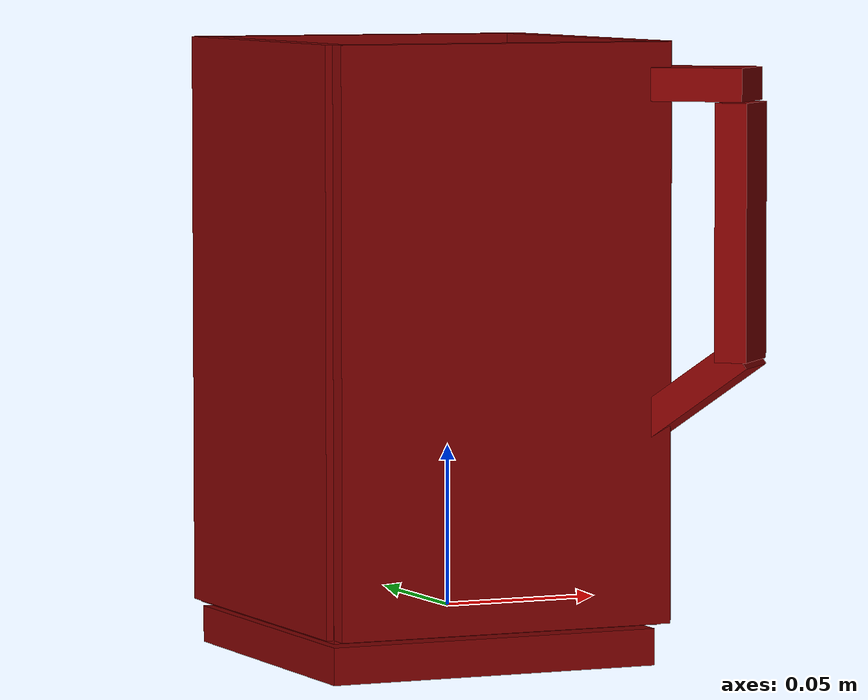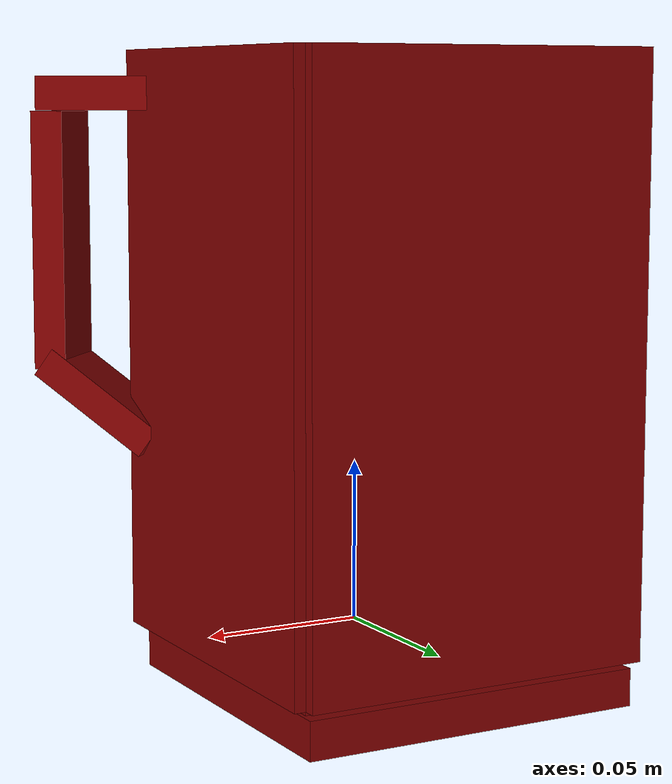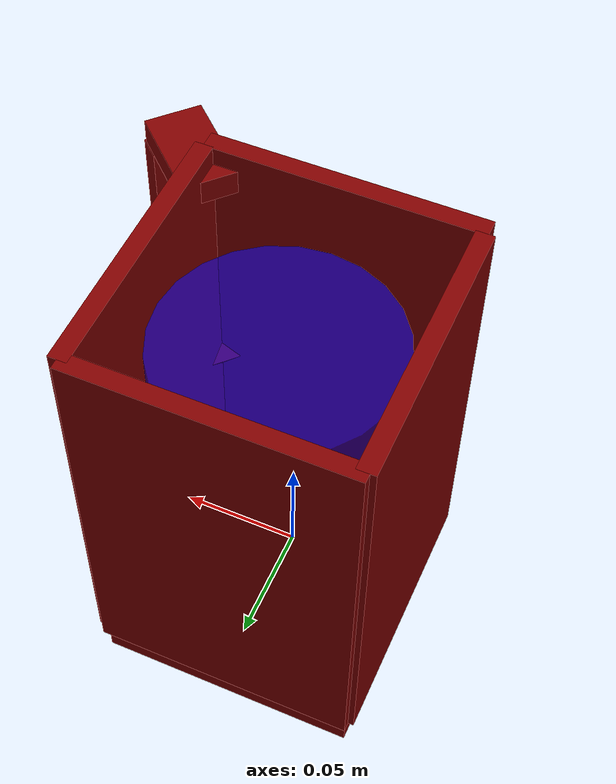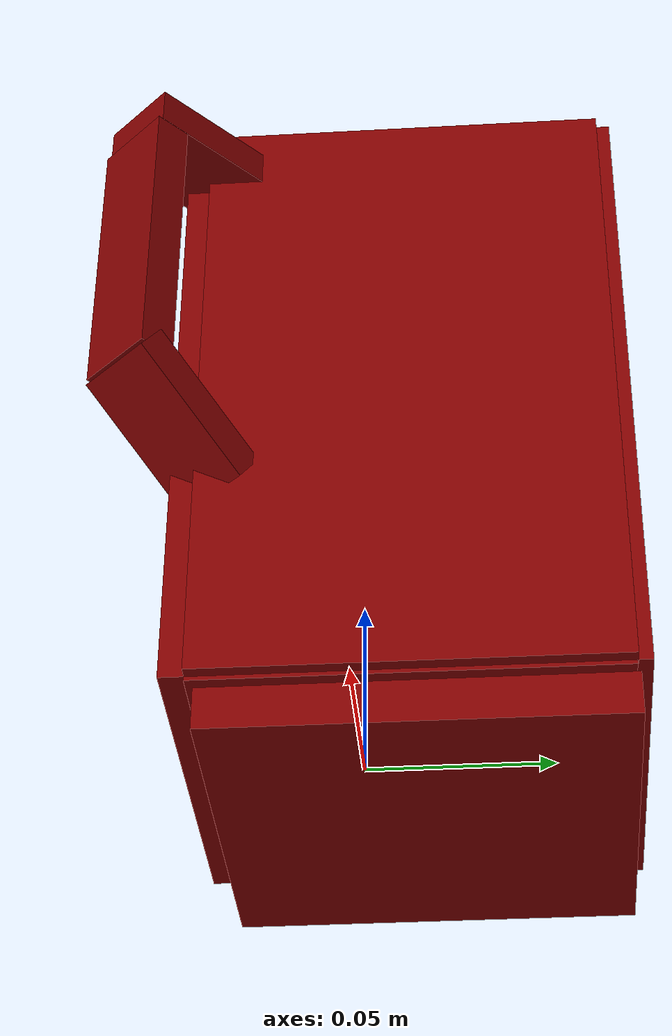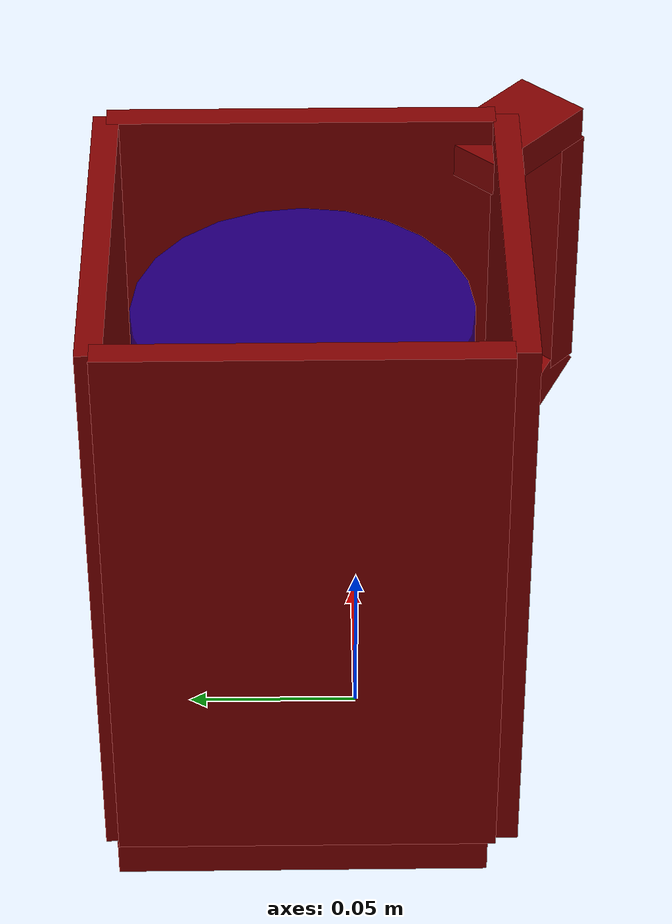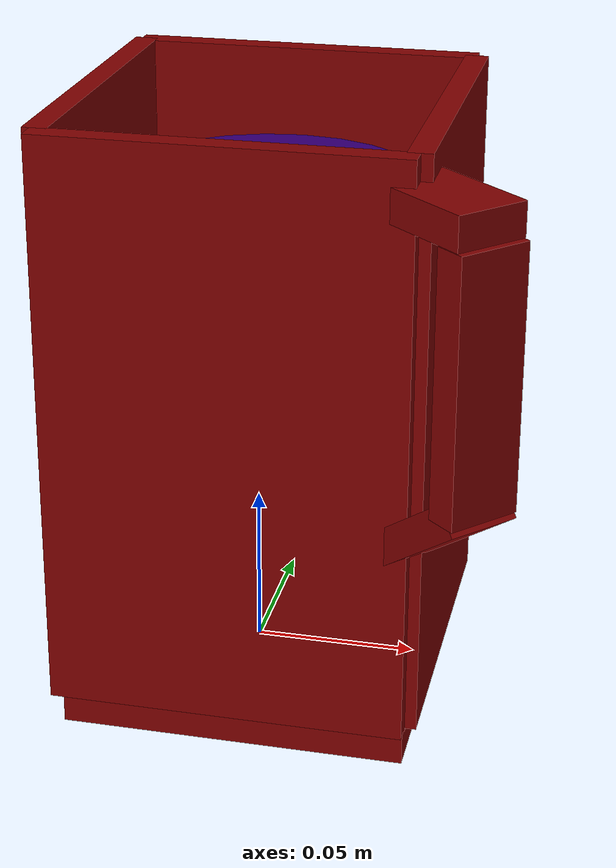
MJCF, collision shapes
<mujoco model="model">
  <option timestep="0.002" gravity="0.0 0.0 -9.81"/>
  <compiler angle="radian"/>
  <asset>
    <mesh file="visuals/blade.obj" name="blade_vis"/>
    <mesh file="visuals/pitcher.obj" name="pitcher_vis"/>
    <mesh file="visuals/pitcher_main.obj" name="pitcher_main_vis"/>
    <texture file="visuals/T_BC001.png" name="pitcher_material" type="2d"/>
    <material name="pitcher_material" rgba="1 1 1 1.0" texture="pitcher_material" shininess="0.5" specular="1"/>
    <texture file="visuals/T_BC001.png" name="blade_material" type="2d"/>
    <material name="blade_material" rgba="1 1 1 1.0" texture="blade_material" shininess="0.5" specular="2"/>
    <texture file="visuals/T_BC001.png" name="pitcher_main_material" type="2d"/>
    <material name="pitcher_main_material" rgba="1 1 1 0.800000011920929" texture="pitcher_main_material" shininess="0.5" specular="0.33333333333333337"/>
  </asset>
  <default>
    <default class="visual">
      <geom conaffinity="0" contype="0" group="1" type="mesh"/>
    </default>
    <default class="collision">
      <geom group="0" rgba="0.5 0 0 0.5" density="1.0" solref="0.004 1" solimp="0.998 0.998 0.001"/>
    </default>
    <default class="spawn">
      <geom group="0" rgba="1 1 1 0.5" contype="0" conaffinity="0"/>
      <site group="0" rgba="1 1 1 0.5"/>
    </default>
    <default class="region">
      <geom group="1" conaffinity="0" contype="0" rgba="0 1 0 0" mass="0"/>
    </default>
  </default>
  <worldbody>
    <body>
      <body name="object">
        <body name="pitcher">
          <geom mesh="pitcher_vis" type="mesh" solimp="0.998 0.998 0.001" solref="0.001 1" friction="0.95 0.3 0.1" class="visual" material="pitcher_material"/>
          <geom class="collision" type="box" pos="0.06211698 -0.04456136 0.16299413" size="0.011408685706555843 0.01944798044860363 0.005156984087079763" quat="0.9165320992469788 0.0 0.0 0.3999611437320709" name="pitcher_handle_2"/>
          <geom class="collision" type="box" pos="0.07395798 -0.05521826 0.11783241" size="0.011408684775233269 0.005029662046581507 0.03966490179300308" quat="0.9165320992469788 0.0 0.0 0.3999611437320709" name="pitcher_handle_1"/>
          <geom class="collision" type="box" pos="0.06330109 -0.04519241 0.06830074" size="0.011408684775233269 0.005029662046581507 0.020796068012714386" quat="0.8157005906105042 0.41792792081832886 0.18237754702568054 0.3559596538543701" name="pitcher_handle_0"/>
          <geom type="box" pos="-0.00042898 0.01620540 -0.01168829" size="0.05380856990814209 0.054080430418252945 0.005756262689828873" quat="1.0 0.0 0.0 0.0" class="collision"/>
          <body name="blade">
            <geom mesh="blade_vis" type="mesh" solimp="0.998 0.998 0.001" solref="0.001 1" friction="0.95 0.3 0.1" class="visual" material="blade_material"/>
            <geom type="cylinder" pos="-0.00076259 0.01659068 0.01732909" size="0.008968064561486244 0.01291128620505333" quat="1.0 0.0 0.0 0.0" class="collision"/>
            <geom type="box" pos="-0.00581280 0.00452992 0.01276770" size="0.003935224376618862 0.006382464896887541 0.0007913180743344128" quat="0.8590430617332458 0.497831791639328 -0.05976736545562744 -0.10313273966312408" class="collision"/>
            <geom type="box" pos="-0.01041935 -0.00741227 0.00744018" size="0.0034937355667352676 0.009759597480297089 0.0007913181325420737" quat="0.9872918128967285 0.0 -0.0 -0.15891800820827484" class="collision"/>
            <geom type="box" pos="0.00393238 0.02946151 0.01276770" size="0.003935224376618862 0.006382465828210115 0.0007913180743344128" quat="0.10313277691602707 0.05976737663149834 0.49783167243003845 0.8590431213378906" class="collision"/>
            <geom type="box" pos="0.00853893 0.04140369 0.00744018" size="0.0034937355667352676 0.009759597480297089 0.0007913181325420737" quat="0.158918097615242 0.0 0.0 0.9872917532920837" class="collision"/>
            <geom type="box" pos="0.01117086 0.01255952 0.01737689" size="0.003935224376618862 0.006382464896887541 0.0007913180743344128" quat="0.819078803062439 0.0 0.0 0.5736810564994812" class="collision"/>
            <geom type="box" pos="0.02087990 0.00881369 0.02663890" size="0.0034937357995659113 0.009759597480297089 0.0007913180743344128" quat="0.6929638385772705 -0.45357760787010193 -0.3069186508655548 0.4689023196697235" class="collision"/>
            <geom type="box" pos="-0.01271869 0.02094228 0.01763733" size="0.003935224376618862 0.006382465362548828 0.0007913180743344128" quat="0.573681116104126 0.0 -0.0 -0.8190787434577942" class="collision"/>
            <geom type="box" pos="-0.02242772 0.02468811 0.02689934" size="0.0034937355667352676 0.009759597480297089 0.0007913181325420737" quat="0.4689021706581116 -0.3069183826446533 0.4535774290561676 -0.6929641962051392" class="collision"/>
          </body>
          <body name="pitcher_main">
            <geom class="region" type="cylinder" size="0.047557055950164795 0.055753376334905624" pos="0.00001552 0.01478123 0.09306583" rgba="0 0 1 0.5" name="reg_int"/>
            <geom mesh="pitcher_main_vis" type="mesh" solimp="0.998 0.998 0.001" solref="0.001 1" friction="0.95 0.3 0.1" class="visual" material="pitcher_main_material"/>
            <geom type="box" pos="-0.00042898 -0.04283430 0.08634938" size="0.05482512712478638 0.0036661962512880564 0.0896683782339096" quat="1.0 0.0 0.0 0.0" class="collision"/>
            <geom type="box" pos="-0.00042898 0.06977503 0.08634938" size="0.05482516810297966 0.0036661962512880564 0.08966850489377975" quat="1.0 0.0 0.0 0.0" class="collision"/>
            <geom type="box" pos="-0.05397190 0.01487471 0.08634938" size="0.0036661906633526087 0.0548253133893013 0.08966860920190811" quat="1.0 0.0 0.0 0.0" class="collision"/>
            <geom type="box" pos="0.05420230 0.01487471 0.08634938" size="0.003666194388642907 0.0548253133893013 0.08966871351003647" quat="1.0 0.0 0.0 0.0" class="collision"/>
            <geom type="box" pos="-0.00042898 0.01470796 -0.00167079" size="0.05482528358697891 0.054755423218011856 0.0027474770322442055" quat="1.0 0.0 0.0 0.0" class="collision"/>
          </body>
        </body>
        <geom class="region" name="reg_bbox" density="0" type="box" pos="0.006543500000000001 0.010548499999999995 0.0835545" size="0.0760885 0.076216 0.100326"/>
      </body>
      <site rgba="0 1 0 0" size="0.005" pos="0.00196234 0.01485872 0.18078268" name="anchor_site"/>
    </body>
  </worldbody>
</mujoco>
